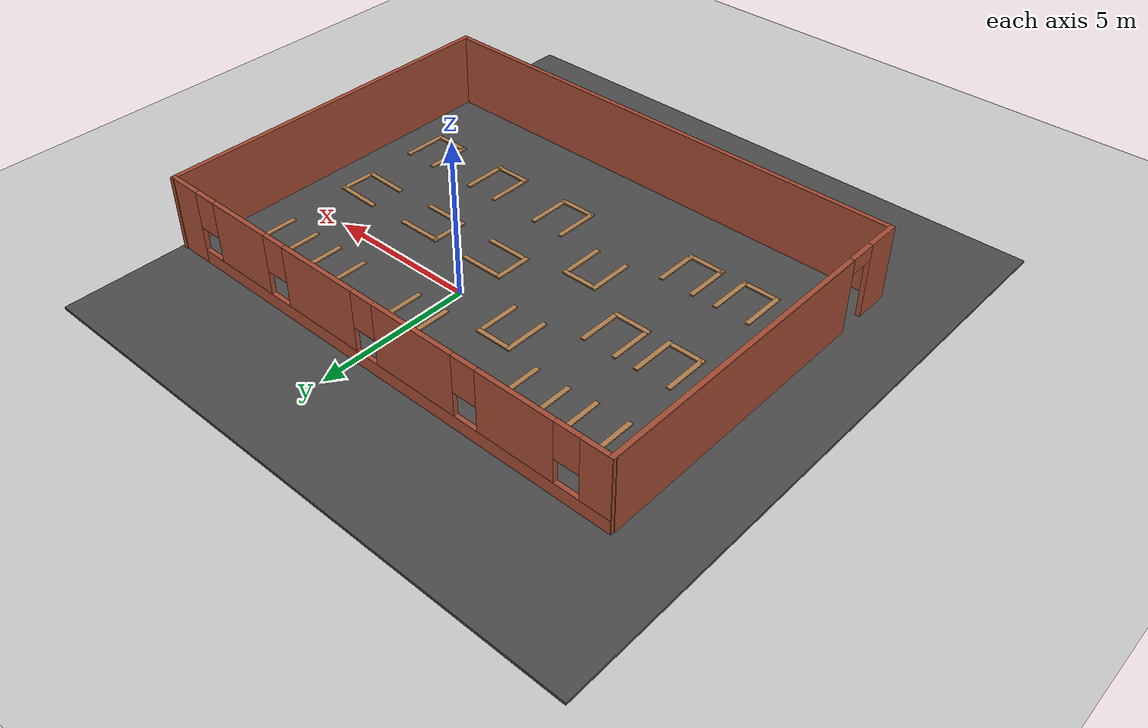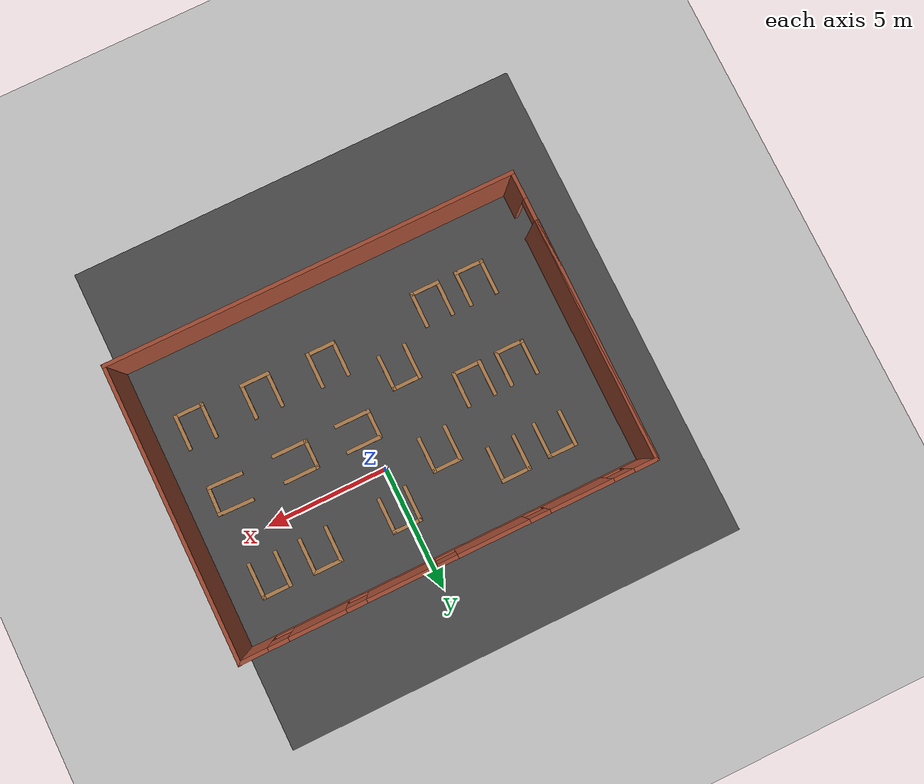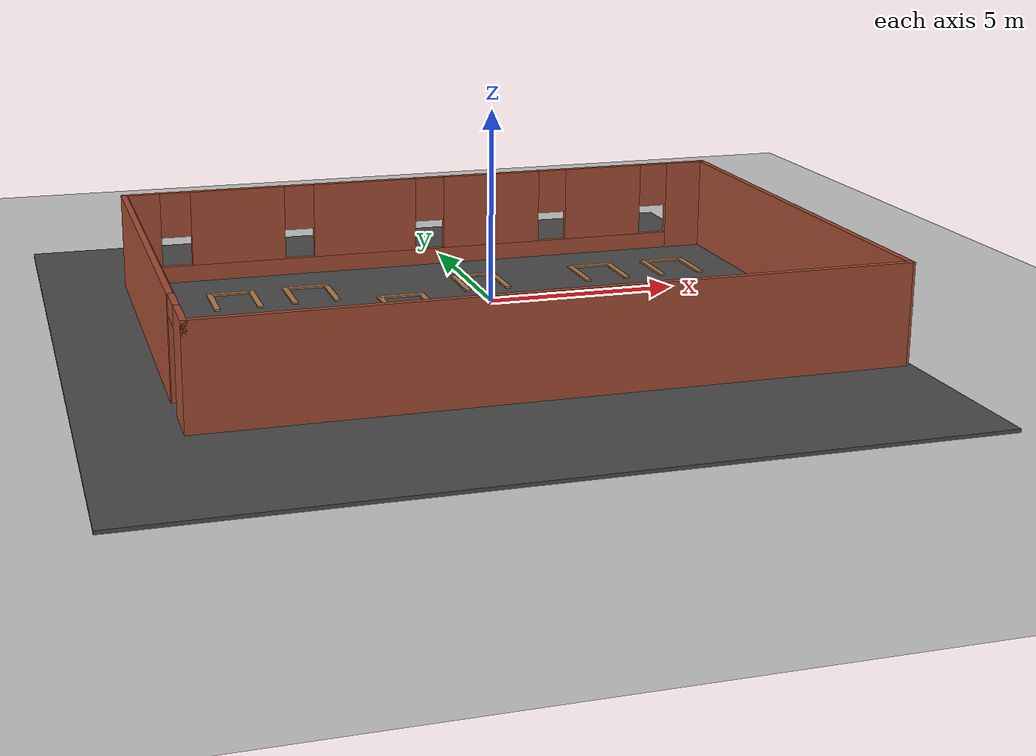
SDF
<sdf version="1.7">
 <world name="default">
  <light name="sun" type="directional">
   <pose>0 0 10 0 -0 0</pose>
   <diffuse>0.8 0.8 0.8 1</diffuse>
   <specular>0.2 0.2 0.2 1</specular>
   <attenuation>
    <range>1000</range>
    <constant>0.9</constant>
    <linear>0.01</linear>
    <quadratic>0.001</quadratic>
   </attenuation>
   <direction>-0.5 0.1 -0.9</direction>
   <spot><inner_angle>0</inner_angle><outer_angle>0</outer_angle><falloff>0</falloff></spot>
  </light>
  <model name="ground_plane">
   <static>1</static>
   <link name="link">
    <collision name="collision">
     <geometry><plane><normal>0 0 1</normal><size>100 100</size></plane></geometry>
     <surface>
      <contact><collide_bitmask>65535</collide_bitmask></contact>
      <friction><ode><mu>100</mu><mu2>50</mu2></ode></friction>
     </surface>
    </collision>
    <visual name="visual">
     <cast_shadows>0</cast_shadows>
     <geometry><plane><normal>0 0 1</normal><size>100 100</size></plane></geometry>
     <material>
      <script><uri>file://media/materials/scripts/gazebo.material</uri><name>Gazebo/Grey</name></script>
     </material>
    </visual>
   </link>
  </model>
  <gravity>0 0 -9.8</gravity>
  <magnetic_field>6e-06 2.3e-05 -4.2e-05</magnetic_field>
  <atmosphere type="adiabatic"/>
  <physics type="ode">
   <max_step_size>0.001</max_step_size>
   <real_time_factor>1</real_time_factor>
   <real_time_update_rate>1000</real_time_update_rate>
  </physics>
  <scene><ambient>0.4 0.4 0.4 1</ambient><background>0.7 0.7 0.7 1</background><shadows>1</shadows></scene>
  <spherical_coordinates>
   <surface_model>EARTH_WGS84</surface_model>
   <latitude_deg>0</latitude_deg>
   <longitude_deg>0</longitude_deg>
   <elevation>0</elevation>
   <heading_deg>0</heading_deg>
  </spherical_coordinates>
  <model name="Test">
   <pose>-0.683476 -1.9137 0 0 -0 0</pose>
   <link name="Wall_10">
    <collision name="Wall_10_Collision">
     <geometry><box><size>16.5 0.15 2.5</size></box></geometry>
     <pose>0 0 1.25 0 -0 0</pose>
    </collision>
    <visual name="Wall_10_Visual">
     <pose>0 0 1.25 0 -0 0</pose>
     <geometry><box><size>16.5 0.15 2.5</size></box></geometry>
     <material>
      <script><uri>file://media/materials/scripts/gazebo.material</uri><name>Gazebo/Bricks</name></script>
      <ambient>1 1 1 1</ambient>
     </material>
     <meta><layer>0</layer></meta>
    </visual>
    <pose>-0.010121 -5.81006 0 0 -0 0</pose>
   </link>
   <link name="Wall_11">
    <collision name="Wall_11_Collision">
     <geometry><box><size>11.7701 0.15 2.5</size></box></geometry>
     <pose>0 0 1.25 0 -0 0</pose>
    </collision>
    <visual name="Wall_11_Visual">
     <pose>0 0 1.25 0 -0 0</pose>
     <geometry><box><size>11.7701 0.15 2.5</size></box></geometry>
     <material>
      <script><uri>file://media/materials/scripts/gazebo.material</uri><name>Gazebo/Bricks</name></script>
      <ambient>1 1 1 1</ambient>
     </material>
     <meta><layer>0</layer></meta>
    </visual>
    <pose>8.17494 0 0 0 -0 1.56906</pose>
   </link>
   <link name="Wall_12">
    <pose>0.009992 5.78994 0 0 -0 3.14159</pose>
    <visual name="Wall_12_Visual_0">
     <pose>-7.65941 0 1.25 0 -0 0</pose>
     <geometry><box><size>1.18118 0.15 2.5</size></box></geometry>
     <material>
      <script><uri>file://media/materials/scripts/gazebo.material</uri><name>Gazebo/Bricks</name></script>
      <ambient>1 1 1 1</ambient>
     </material>
     <meta><layer>0</layer></meta>
    </visual>
    <collision name="Wall_12_Collision_0">
     <geometry><box><size>1.18118 0.15 2.5</size></box></geometry>
     <pose>-7.65941 0 1.25 0 -0 0</pose>
    </collision>
    <visual name="Wall_12_Visual_1">
     <pose>0.590592 0 0.25 0 -0 0</pose>
     <geometry><box><size>15.3188 0.15 0.5</size></box></geometry>
     <material>
      <script><uri>file://media/materials/scripts/gazebo.material</uri><name>Gazebo/Bricks</name></script>
      <ambient>1 1 1 1</ambient>
     </material>
     <meta><layer>0</layer></meta>
    </visual>
    <collision name="Wall_12_Collision_1">
     <geometry><box><size>15.3188 0.15 0.5</size></box></geometry>
     <pose>0.590592 0 0.25 0 -0 0</pose>
    </collision>
    <visual name="Wall_12_Visual_2">
     <pose>-5.15024 0 1.5 0 -0 0</pose>
     <geometry><box><size>2.23715 0.15 2</size></box></geometry>
     <material>
      <script><uri>file://media/materials/scripts/gazebo.material</uri><name>Gazebo/Bricks</name></script>
      <ambient>1 1 1 1</ambient>
     </material>
     <meta><layer>0</layer></meta>
    </visual>
    <collision name="Wall_12_Collision_2">
     <geometry><box><size>2.23715 0.15 2</size></box></geometry>
     <pose>-5.15024 0 1.5 0 -0 0</pose>
    </collision>
    <visual name="Wall_12_Visual_3">
     <pose>-1.85162 0 1.5 0 -0 0</pose>
     <geometry><box><size>2.7601 0.15 2</size></box></geometry>
     <material>
      <script><uri>file://media/materials/scripts/gazebo.material</uri><name>Gazebo/Bricks</name></script>
      <ambient>1 1 1 1</ambient>
     </material>
     <meta><layer>0</layer></meta>
    </visual>
    <collision name="Wall_12_Collision_3">
     <geometry><box><size>2.7601 0.15 2</size></box></geometry>
     <pose>-1.85162 0 1.5 0 -0 0</pose>
    </collision>
    <visual name="Wall_12_Visual_4">
     <pose>1.74871 0 1.5 0 -0 0</pose>
     <geometry><box><size>2.84056 0.15 2</size></box></geometry>
     <material>
      <script><uri>file://media/materials/scripts/gazebo.material</uri><name>Gazebo/Bricks</name></script>
      <ambient>1 1 1 1</ambient>
     </material>
     <meta><layer>0</layer></meta>
    </visual>
    <collision name="Wall_12_Collision_4">
     <geometry><box><size>2.84056 0.15 2</size></box></geometry>
     <pose>1.74871 0 1.5 0 -0 0</pose>
    </collision>
    <visual name="Wall_12_Visual_5">
     <pose>5.22836 0 1.5 0 -0 0</pose>
     <geometry><box><size>2.51874 0.15 2</size></box></geometry>
     <material>
      <script><uri>file://media/materials/scripts/gazebo.material</uri><name>Gazebo/Bricks</name></script>
      <ambient>1 1 1 1</ambient>
     </material>
     <meta><layer>0</layer></meta>
    </visual>
    <collision name="Wall_12_Collision_5">
     <geometry><box><size>2.51874 0.15 2</size></box></geometry>
     <pose>5.22836 0 1.5 0 -0 0</pose>
    </collision>
    <visual name="Wall_12_Visual_6">
     <pose>7.76887 0 1.5 0 -0 0</pose>
     <geometry><box><size>0.962268 0.15 2</size></box></geometry>
     <material>
      <script><uri>file://media/materials/scripts/gazebo.material</uri><name>Gazebo/Bricks</name></script>
      <ambient>1 1 1 1</ambient>
     </material>
     <meta><layer>0</layer></meta>
    </visual>
    <collision name="Wall_12_Collision_6">
     <geometry><box><size>0.962268 0.15 2</size></box></geometry>
     <pose>7.76887 0 1.5 0 -0 0</pose>
    </collision>
    <visual name="Wall_12_Visual_7">
     <pose>-6.66882 0 1.9 0 -0 0</pose>
     <geometry><box><size>0.8 0.15 1.2</size></box></geometry>
     <material>
      <script><uri>file://media/materials/scripts/gazebo.material</uri><name>Gazebo/Bricks</name></script>
      <ambient>1 1 1 1</ambient>
     </material>
     <meta><layer>0</layer></meta>
    </visual>
    <collision name="Wall_12_Collision_7">
     <geometry><box><size>0.8 0.15 1.2</size></box></geometry>
     <pose>-6.66882 0 1.9 0 -0 0</pose>
    </collision>
    <visual name="Wall_12_Visual_8">
     <pose>-3.63167 0 1.9 0 -0 0</pose>
     <geometry><box><size>0.8 0.15 1.2</size></box></geometry>
     <material>
      <script><uri>file://media/materials/scripts/gazebo.material</uri><name>Gazebo/Bricks</name></script>
      <ambient>1 1 1 1</ambient>
     </material>
     <meta><layer>0</layer></meta>
    </visual>
    <collision name="Wall_12_Collision_8">
     <geometry><box><size>0.8 0.15 1.2</size></box></geometry>
     <pose>-3.63167 0 1.9 0 -0 0</pose>
    </collision>
    <visual name="Wall_12_Visual_9">
     <pose>-0.071564 0 1.9 0 -0 0</pose>
     <geometry><box><size>0.8 0.15 1.2</size></box></geometry>
     <material>
      <script><uri>file://media/materials/scripts/gazebo.material</uri><name>Gazebo/Bricks</name></script>
      <ambient>1 1 1 1</ambient>
     </material>
     <meta><layer>0</layer></meta>
    </visual>
    <collision name="Wall_12_Collision_9">
     <geometry><box><size>0.8 0.15 1.2</size></box></geometry>
     <pose>-0.071564 0 1.9 0 -0 0</pose>
    </collision>
    <visual name="Wall_12_Visual_10">
     <pose>3.56899 0 1.9 0 -0 0</pose>
     <geometry><box><size>0.8 0.15 1.2</size></box></geometry>
     <material>
      <script><uri>file://media/materials/scripts/gazebo.material</uri><name>Gazebo/Bricks</name></script>
      <ambient>1 1 1 1</ambient>
     </material>
     <meta><layer>0</layer></meta>
    </visual>
    <collision name="Wall_12_Collision_10">
     <geometry><box><size>0.8 0.15 1.2</size></box></geometry>
     <pose>3.56899 0 1.9 0 -0 0</pose>
    </collision>
    <visual name="Wall_12_Visual_11">
     <pose>6.88773 0 1.9 0 -0 0</pose>
     <geometry><box><size>0.8 0.15 1.2</size></box></geometry>
     <material>
      <script><uri>file://media/materials/scripts/gazebo.material</uri><name>Gazebo/Bricks</name></script>
      <ambient>1 1 1 1</ambient>
     </material>
     <meta><layer>0</layer></meta>
    </visual>
    <collision name="Wall_12_Collision_11">
     <geometry><box><size>0.8 0.15 1.2</size></box></geometry>
     <pose>6.88773 0 1.9 0 -0 0</pose>
    </collision>
   </link>
   <link name="Wall_9">
    <pose>-8.18512 -0.010057 0 0 -0 -1.5708</pose>
    <visual name="Wall_9_Visual_0">
     <pose>-1.02405 0 1.25 0 -0 0</pose>
     <geometry><box><size>9.7019 0.15 2.5</size></box></geometry>
     <material>
      <script><uri>file://media/materials/scripts/gazebo.material</uri><name>Gazebo/Bricks</name></script>
      <ambient>1 1 1 1</ambient>
     </material>
     <meta><layer>0</layer></meta>
    </visual>
    <collision name="Wall_9_Collision_0">
     <geometry><box><size>9.7019 0.15 2.5</size></box></geometry>
     <pose>-1.02405 0 1.25 0 -0 0</pose>
    </collision>
    <visual name="Wall_9_Visual_1">
     <pose>5.30095 0 1.25 0 -0 0</pose>
     <geometry><box><size>1.1481 0.15 2.5</size></box></geometry>
     <material>
      <script><uri>file://media/materials/scripts/gazebo.material</uri><name>Gazebo/Bricks</name></script>
      <ambient>1 1 1 1</ambient>
     </material>
     <meta><layer>0</layer></meta>
    </visual>
    <collision name="Wall_9_Collision_1">
     <geometry><box><size>1.1481 0.15 2.5</size></box></geometry>
     <pose>5.30095 0 1.25 0 -0 0</pose>
    </collision>
    <visual name="Wall_9_Visual_2">
     <pose>4.2769 0 2.25 0 -0 0</pose>
     <geometry><box><size>0.9 0.15 0.5</size></box></geometry>
     <material>
      <script><uri>file://media/materials/scripts/gazebo.material</uri><name>Gazebo/Bricks</name></script>
      <ambient>1 1 1 1</ambient>
     </material>
     <meta><layer>0</layer></meta>
    </visual>
    <collision name="Wall_9_Collision_2">
     <geometry><box><size>0.9 0.15 0.5</size></box></geometry>
     <pose>4.2769 0 2.25 0 -0 0</pose>
    </collision>
   </link>
   <static>1</static>
  </model>
  <model name="Test_0">
   <pose>-3.5175 1.1675 0 0 -0 0</pose>
   <link name="Wall_15">
    <collision name="Wall_15_Collision">
     <geometry><box><size>1.5 0.15 0.1</size></box></geometry>
     <pose>0 0 0.05 0 -0 0</pose>
    </collision>
    <visual name="Wall_15_Visual">
     <pose>0 0 0.05 0 -0 0</pose>
     <geometry><box><size>1.5 0.15 0.1</size></box></geometry>
     <material>
      <script><uri>file://media/materials/scripts/gazebo.material</uri><name>Gazebo/Wood</name></script>
      <ambient>1 0.764706 0.305882 1</ambient>
     </material>
     <meta><layer>0</layer></meta>
    </visual>
    <pose>-3.4425 0.4175 0 0 -0 1.5708</pose>
   </link>
   <link name="Wall_17">
    <collision name="Wall_17_Collision">
     <geometry><box><size>1.25 0.15 0.1</size></box></geometry>
     <pose>0 0 0.05 0 -0 0</pose>
    </collision>
    <visual name="Wall_17_Visual">
     <pose>0 0 0.05 0 -0 0</pose>
     <geometry><box><size>1.25 0.15 0.1</size></box></geometry>
     <material>
      <script><uri>file://media/materials/scripts/gazebo.material</uri><name>Gazebo/Wood</name></script>
      <ambient>0.921569 0.807843 0.615686 1</ambient>
     </material>
     <meta><layer>0</layer></meta>
    </visual>
    <pose>-2.8925 1.0925 0 0 -0 0</pose>
   </link>
   <link name="Wall_18">
    <collision name="Wall_18_Collision">
     <geometry><box><size>1.5 0.15 0.1</size></box></geometry>
     <pose>0 0 0.05 0 -0 0</pose>
    </collision>
    <visual name="Wall_18_Visual">
     <pose>0 0 0.05 0 -0 0</pose>
     <geometry><box><size>1.5 0.15 0.1</size></box></geometry>
     <material>
      <script><uri>file://media/materials/scripts/gazebo.material</uri><name>Gazebo/Wood</name></script>
      <ambient>1 0.764706 0.305882 1</ambient>
     </material>
     <meta><layer>0</layer></meta>
    </visual>
    <pose>-2.3425 0.4175 0 0 -0 -1.5708</pose>
   </link>
   <static>1</static>
  </model>
  <model name="Test_0_clone">
   <pose>-1.50912 1.24172 0 0 -0 0</pose>
   <link name="Wall_15">
    <collision name="Wall_15_Collision">
     <geometry><box><size>1.5 0.15 0.1</size></box></geometry>
     <pose>0 0 0.05 0 -0 0</pose>
    </collision>
    <visual name="Wall_15_Visual">
     <pose>0 0 0.05 0 -0 0</pose>
     <geometry><box><size>1.5 0.15 0.1</size></box></geometry>
     <material>
      <script><uri>file://media/materials/scripts/gazebo.material</uri><name>Gazebo/Wood</name></script>
      <ambient>1 0.764706 0.305882 1</ambient>
     </material>
     <meta><layer>0</layer></meta>
    </visual>
    <pose>-3.4425 0.4175 0 0 -0 1.5708</pose>
   </link>
   <link name="Wall_17">
    <collision name="Wall_17_Collision">
     <geometry><box><size>1.25 0.15 0.1</size></box></geometry>
     <pose>0 0 0.05 0 -0 0</pose>
    </collision>
    <visual name="Wall_17_Visual">
     <pose>0 0 0.05 0 -0 0</pose>
     <geometry><box><size>1.25 0.15 0.1</size></box></geometry>
     <material>
      <script><uri>file://media/materials/scripts/gazebo.material</uri><name>Gazebo/Wood</name></script>
      <ambient>0.921569 0.807843 0.615686 1</ambient>
     </material>
     <meta><layer>0</layer></meta>
    </visual>
    <pose>-2.8925 1.0925 0 0 -0 0</pose>
   </link>
   <link name="Wall_18">
    <collision name="Wall_18_Collision">
     <geometry><box><size>1.5 0.15 0.1</size></box></geometry>
     <pose>0 0 0.05 0 -0 0</pose>
    </collision>
    <visual name="Wall_18_Visual">
     <pose>0 0 0.05 0 -0 0</pose>
     <geometry><box><size>1.5 0.15 0.1</size></box></geometry>
     <material>
      <script><uri>file://media/materials/scripts/gazebo.material</uri><name>Gazebo/Wood</name></script>
      <ambient>1 0.764706 0.305882 1</ambient>
     </material>
     <meta><layer>0</layer></meta>
    </visual>
    <pose>-2.3425 0.4175 0 0 -0 -1.5708</pose>
   </link>
   <static>1</static>
  </model>
  <model name="Test_0_clone_clone">
   <pose>0.724845 -3.76252 0 0 -0 0</pose>
   <link name="Wall_15">
    <collision name="Wall_15_Collision">
     <geometry><box><size>1.5 0.15 0.1</size></box></geometry>
     <pose>0 0 0.05 0 -0 0</pose>
    </collision>
    <visual name="Wall_15_Visual">
     <pose>0 0 0.05 0 -0 0</pose>
     <geometry><box><size>1.5 0.15 0.1</size></box></geometry>
     <material>
      <script><uri>file://media/materials/scripts/gazebo.material</uri><name>Gazebo/Wood</name></script>
      <ambient>1 0.764706 0.305882 1</ambient>
     </material>
     <meta><layer>0</layer></meta>
    </visual>
    <pose>-3.4425 0.4175 0 0 -0 1.5708</pose>
   </link>
   <link name="Wall_17">
    <collision name="Wall_17_Collision">
     <geometry><box><size>1.25 0.15 0.1</size></box></geometry>
     <pose>0 0 0.05 0 -0 0</pose>
    </collision>
    <visual name="Wall_17_Visual">
     <pose>0 0 0.05 0 -0 0</pose>
     <geometry><box><size>1.25 0.15 0.1</size></box></geometry>
     <material>
      <script><uri>file://media/materials/scripts/gazebo.material</uri><name>Gazebo/Wood</name></script>
      <ambient>0.921569 0.807843 0.615686 1</ambient>
     </material>
     <meta><layer>0</layer></meta>
    </visual>
    <pose>-2.8925 1.0925 0 0 -0 0</pose>
   </link>
   <link name="Wall_18">
    <collision name="Wall_18_Collision">
     <geometry><box><size>1.5 0.15 0.1</size></box></geometry>
     <pose>0 0 0.05 0 -0 0</pose>
    </collision>
    <visual name="Wall_18_Visual">
     <pose>0 0 0.05 0 -0 0</pose>
     <geometry><box><size>1.5 0.15 0.1</size></box></geometry>
     <material>
      <script><uri>file://media/materials/scripts/gazebo.material</uri><name>Gazebo/Wood</name></script>
      <ambient>1 0.764706 0.305882 1</ambient>
     </material>
     <meta><layer>0</layer></meta>
    </visual>
    <pose>-2.3425 0.4175 0 0 -0 -1.5708</pose>
   </link>
   <static>1</static>
  </model>
  <model name="Test_0_clone_clone_0">
   <pose>3.08923 1.18201 0 0 -0 0</pose>
   <link name="Wall_15">
    <collision name="Wall_15_Collision">
     <geometry><box><size>1.5 0.15 0.1</size></box></geometry>
     <pose>0 0 0.05 0 -0 0</pose>
    </collision>
    <visual name="Wall_15_Visual">
     <pose>0 0 0.05 0 -0 0</pose>
     <geometry><box><size>1.5 0.15 0.1</size></box></geometry>
     <material>
      <script><uri>file://media/materials/scripts/gazebo.material</uri><name>Gazebo/Wood</name></script>
      <ambient>1 0.764706 0.305882 1</ambient>
     </material>
     <meta><layer>0</layer></meta>
    </visual>
    <pose>-3.4425 0.4175 0 0 -0 1.5708</pose>
   </link>
   <link name="Wall_17">
    <collision name="Wall_17_Collision">
     <geometry><box><size>1.25 0.15 0.1</size></box></geometry>
     <pose>0 0 0.05 0 -0 0</pose>
    </collision>
    <visual name="Wall_17_Visual">
     <pose>0 0 0.05 0 -0 0</pose>
     <geometry><box><size>1.25 0.15 0.1</size></box></geometry>
     <material>
      <script><uri>file://media/materials/scripts/gazebo.material</uri><name>Gazebo/Wood</name></script>
      <ambient>0.921569 0.807843 0.615686 1</ambient>
     </material>
     <meta><layer>0</layer></meta>
    </visual>
    <pose>-2.8925 1.0925 0 0 -0 0</pose>
   </link>
   <link name="Wall_18">
    <collision name="Wall_18_Collision">
     <geometry><box><size>1.5 0.15 0.1</size></box></geometry>
     <pose>0 0 0.05 0 -0 0</pose>
    </collision>
    <visual name="Wall_18_Visual">
     <pose>0 0 0.05 0 -0 0</pose>
     <geometry><box><size>1.5 0.15 0.1</size></box></geometry>
     <material>
      <script><uri>file://media/materials/scripts/gazebo.material</uri><name>Gazebo/Wood</name></script>
      <ambient>1 0.764706 0.305882 1</ambient>
     </material>
     <meta><layer>0</layer></meta>
    </visual>
    <pose>-2.3425 0.4175 0 0 -0 -1.5708</pose>
   </link>
   <static>1</static>
  </model>
  <model name="Test_0_clone_clone_1">
   <pose>6.46422 1.24613 0 0 -0 0</pose>
   <link name="Wall_15">
    <collision name="Wall_15_Collision">
     <geometry><box><size>1.5 0.15 0.1</size></box></geometry>
     <pose>0 0 0.05 0 -0 0</pose>
    </collision>
    <visual name="Wall_15_Visual">
     <pose>0 0 0.05 0 -0 0</pose>
     <geometry><box><size>1.5 0.15 0.1</size></box></geometry>
     <material>
      <script><uri>file://media/materials/scripts/gazebo.material</uri><name>Gazebo/Wood</name></script>
      <ambient>1 0.764706 0.305882 1</ambient>
     </material>
     <meta><layer>0</layer></meta>
    </visual>
    <pose>-3.4425 0.4175 0 0 -0 1.5708</pose>
   </link>
   <link name="Wall_17">
    <collision name="Wall_17_Collision">
     <geometry><box><size>1.25 0.15 0.1</size></box></geometry>
     <pose>0 0 0.05 0 -0 0</pose>
    </collision>
    <visual name="Wall_17_Visual">
     <pose>0 0 0.05 0 -0 0</pose>
     <geometry><box><size>1.25 0.15 0.1</size></box></geometry>
     <material>
      <script><uri>file://media/materials/scripts/gazebo.material</uri><name>Gazebo/Wood</name></script>
      <ambient>0.921569 0.807843 0.615686 1</ambient>
     </material>
     <meta><layer>0</layer></meta>
    </visual>
    <pose>-2.8925 1.0925 0 0 -0 0</pose>
   </link>
   <link name="Wall_18">
    <collision name="Wall_18_Collision">
     <geometry><box><size>1.5 0.15 0.1</size></box></geometry>
     <pose>0 0 0.05 0 -0 0</pose>
    </collision>
    <visual name="Wall_18_Visual">
     <pose>0 0 0.05 0 -0 0</pose>
     <geometry><box><size>1.5 0.15 0.1</size></box></geometry>
     <material>
      <script><uri>file://media/materials/scripts/gazebo.material</uri><name>Gazebo/Wood</name></script>
      <ambient>1 0.764706 0.305882 1</ambient>
     </material>
     <meta><layer>0</layer></meta>
    </visual>
    <pose>-2.3425 0.4175 0 0 -0 -1.5708</pose>
   </link>
   <static>1</static>
  </model>
  <model name="Test_0_clone_clone_2">
   <pose>8.59496 1.24484 0 0 -0 0</pose>
   <link name="Wall_15">
    <collision name="Wall_15_Collision">
     <geometry><box><size>1.5 0.15 0.1</size></box></geometry>
     <pose>0 0 0.05 0 -0 0</pose>
    </collision>
    <visual name="Wall_15_Visual">
     <pose>0 0 0.05 0 -0 0</pose>
     <geometry><box><size>1.5 0.15 0.1</size></box></geometry>
     <material>
      <script><uri>file://media/materials/scripts/gazebo.material</uri><name>Gazebo/Wood</name></script>
      <ambient>1 0.764706 0.305882 1</ambient>
     </material>
     <meta><layer>0</layer></meta>
    </visual>
    <pose>-3.4425 0.4175 0 0 -0 1.5708</pose>
   </link>
   <link name="Wall_17">
    <collision name="Wall_17_Collision">
     <geometry><box><size>1.25 0.15 0.1</size></box></geometry>
     <pose>0 0 0.05 0 -0 0</pose>
    </collision>
    <visual name="Wall_17_Visual">
     <pose>0 0 0.05 0 -0 0</pose>
     <geometry><box><size>1.25 0.15 0.1</size></box></geometry>
     <material>
      <script><uri>file://media/materials/scripts/gazebo.material</uri><name>Gazebo/Wood</name></script>
      <ambient>0.921569 0.807843 0.615686 1</ambient>
     </material>
     <meta><layer>0</layer></meta>
    </visual>
    <pose>-2.8925 1.0925 0 0 -0 0</pose>
   </link>
   <link name="Wall_18">
    <collision name="Wall_18_Collision">
     <geometry><box><size>1.5 0.15 0.1</size></box></geometry>
     <pose>0 0 0.05 0 -0 0</pose>
    </collision>
    <visual name="Wall_18_Visual">
     <pose>0 0 0.05 0 -0 0</pose>
     <geometry><box><size>1.5 0.15 0.1</size></box></geometry>
     <material>
      <script><uri>file://media/materials/scripts/gazebo.material</uri><name>Gazebo/Wood</name></script>
      <ambient>1 0.764706 0.305882 1</ambient>
     </material>
     <meta><layer>0</layer></meta>
    </visual>
    <pose>-2.3425 0.4175 0 0 -0 -1.5708</pose>
   </link>
   <static>1</static>
  </model>
  <model name="Test_0_clone_0_clone">
   <pose>-7.37959 -1.07811 0 0 -0 3.13796</pose>
   <link name="Wall_15">
    <collision name="Wall_15_Collision">
     <geometry><box><size>1.5 0.15 0.1</size></box></geometry>
     <pose>0 0 0.05 0 -0 0</pose>
    </collision>
    <visual name="Wall_15_Visual">
     <pose>0 0 0.05 0 -0 0</pose>
     <geometry><box><size>1.5 0.15 0.1</size></box></geometry>
     <material>
      <script><uri>file://media/materials/scripts/gazebo.material</uri><name>Gazebo/Wood</name></script>
      <ambient>1 0.764706 0.305882 1</ambient>
     </material>
     <meta><layer>0</layer></meta>
    </visual>
    <pose>-3.4425 0.4175 0 0 -0 1.5708</pose>
   </link>
   <link name="Wall_17">
    <collision name="Wall_17_Collision">
     <geometry><box><size>1.25 0.15 0.1</size></box></geometry>
     <pose>0 0 0.05 0 -0 0</pose>
    </collision>
    <visual name="Wall_17_Visual">
     <pose>0 0 0.05 0 -0 0</pose>
     <geometry><box><size>1.25 0.15 0.1</size></box></geometry>
     <material>
      <script><uri>file://media/materials/scripts/gazebo.material</uri><name>Gazebo/Wood</name></script>
      <ambient>0.921569 0.807843 0.615686 1</ambient>
     </material>
     <meta><layer>0</layer></meta>
    </visual>
    <pose>-2.8925 1.0925 0 0 -0 0</pose>
   </link>
   <link name="Wall_18">
    <collision name="Wall_18_Collision">
     <geometry><box><size>1.5 0.15 0.1</size></box></geometry>
     <pose>0 0 0.05 0 -0 0</pose>
    </collision>
    <visual name="Wall_18_Visual">
     <pose>0 0 0.05 0 -0 0</pose>
     <geometry><box><size>1.5 0.15 0.1</size></box></geometry>
     <material>
      <script><uri>file://media/materials/scripts/gazebo.material</uri><name>Gazebo/Wood</name></script>
      <ambient>1 0.764706 0.305882 1</ambient>
     </material>
     <meta><layer>0</layer></meta>
    </visual>
    <pose>-2.3425 0.4175 0 0 -0 -1.5708</pose>
   </link>
   <static>1</static>
  </model>
  <model name="Test_2">
   <pose>-4.482 -0.9505 0 0 -0 0</pose>
   <link name="Wall_19">
    <collision name="Wall_19_Collision">
     <geometry><box><size>9.6 0.15 2.5</size></box></geometry>
     <pose>0 0 1.25 0 -0 0</pose>
    </collision>
    <visual name="Wall_19_Visual">
     <pose>0 0 1.25 0 -0 0</pose>
     <geometry><box><size>9.6 0.15 2.5</size></box></geometry>
     <material>
      <script><uri>file://media/materials/scripts/gazebo.material</uri><name>Gazebo/Bricks</name></script>
      <ambient>1 1 1 1</ambient>
     </material>
     <meta><layer>0</layer></meta>
    </visual>
    <pose>-4.407 0 0 0 -0 -1.5708</pose>
   </link>
   <static>1</static>
  </model>
  <model name="asphalt_plane">
   <link name="link">
    <inertial>
     <mass>1</mass>
     <inertia><ixx>1</ixx><ixy>0</ixy><ixz>0</ixz><iyy>1</iyy><iyz>0</iyz><izz>1</izz></inertia>
    </inertial>
    <visual name="visual">
     <cast_shadows>0</cast_shadows>
     <geometry><box><size>18.79 20 0.109366</size></box></geometry>
     <material>
      <script>
       <uri>model://asphalt_plane/materials/scripts</uri>
       <uri>model://asphalt_plane/materials/textures</uri>
       <name>vrc/asphalt</name>
      </script>
      <shader type="pixel"><normal_map>__default__</normal_map></shader>
      <ambient>0.5 0.5 0.5 1</ambient>
      <diffuse>0.5 0.5 0.5 1</diffuse>
      <specular>0.2 0.2 0.2 1</specular>
      <emissive>0 0 0 1</emissive>
     </material>
    </visual>
    <collision name="collision">
     <geometry><box><size>18.79 411.527 0.109366</size></box></geometry>
     <surface>
      <friction>
       <ode><mu>1</mu><mu2>1</mu2><fdir1>0 0 0</fdir1><slip1>0</slip1><slip2>0</slip2></ode>
       <torsional>
        <coefficient>1</coefficient>
        <patch_radius>0</patch_radius>
        <surface_radius>0</surface_radius>
        <use_patch_radius>1</use_patch_radius>
        <ode><slip>0</slip></ode>
       </torsional>
      </friction>
      <bounce><restitution_coefficient>0</restitution_coefficient><threshold>1e+06</threshold></bounce>
      <contact>
       <collide_without_contact>0</collide_without_contact>
       <collide_without_contact_bitmask>1</collide_without_contact_bitmask>
       <collide_bitmask>1</collide_bitmask>
       <ode>
        <soft_cfm>0</soft_cfm>
        <soft_erp>0.2</soft_erp>
        <kp>1e+13</kp>
        <kd>1</kd>
        <max_vel>0.01</max_vel>
        <min_depth>0</min_depth>
       </ode>
       <bullet>
        <split_impulse>1</split_impulse>
        <split_impulse_penetration_threshold>-0.01</split_impulse_penetration_threshold>
        <soft_cfm>0</soft_cfm>
        <soft_erp>0.2</soft_erp>
        <kp>1e+13</kp>
        <kd>1</kd>
       </bullet>
      </contact>
     </surface>
    </collision>
   </link>
   <static>1</static>
   <pose>-1.73228 -2.09801 0 0 -0 0</pose>
  </model>
  <model name="Test_0_clone_clone_clone">
   <pose>-9.21336 -1.10168 0 0 -0 3.139</pose>
   <link name="Wall_15">
    <collision name="Wall_15_Collision">
     <geometry><box><size>1.5 0.15 0.1</size></box></geometry>
     <pose>0 0 0.05 0 -0 0</pose>
    </collision>
    <visual name="Wall_15_Visual">
     <pose>0 0 0.05 0 -0 0</pose>
     <geometry><box><size>1.5 0.15 0.1</size></box></geometry>
     <material>
      <script><uri>file://media/materials/scripts/gazebo.material</uri><name>Gazebo/Wood</name></script>
      <ambient>1 0.764706 0.305882 1</ambient>
     </material>
     <meta><layer>0</layer></meta>
    </visual>
    <pose>-3.4425 0.4175 0 0 -0 1.5708</pose>
   </link>
   <link name="Wall_17">
    <collision name="Wall_17_Collision">
     <geometry><box><size>1.25 0.15 0.1</size></box></geometry>
     <pose>0 0 0.05 0 -0 0</pose>
    </collision>
    <visual name="Wall_17_Visual">
     <pose>0 0 0.05 0 -0 0</pose>
     <geometry><box><size>1.25 0.15 0.1</size></box></geometry>
     <material>
      <script><uri>file://media/materials/scripts/gazebo.material</uri><name>Gazebo/Wood</name></script>
      <ambient>0.921569 0.807843 0.615686 1</ambient>
     </material>
     <meta><layer>0</layer></meta>
    </visual>
    <pose>-2.8925 1.0925 0 0 -0 0</pose>
   </link>
   <link name="Wall_18">
    <collision name="Wall_18_Collision">
     <geometry><box><size>1.5 0.15 0.1</size></box></geometry>
     <pose>0 0 0.05 0 -0 0</pose>
    </collision>
    <visual name="Wall_18_Visual">
     <pose>0 0 0.05 0 -0 0</pose>
     <geometry><box><size>1.5 0.15 0.1</size></box></geometry>
     <material>
      <script><uri>file://media/materials/scripts/gazebo.material</uri><name>Gazebo/Wood</name></script>
      <ambient>1 0.764706 0.305882 1</ambient>
     </material>
     <meta><layer>0</layer></meta>
    </visual>
    <pose>-2.3425 0.4175 0 0 -0 -1.5708</pose>
   </link>
   <static>1</static>
  </model>
  <model name="Test_0_clone_0_clone_clone">
   <pose>-9.18751 -4.59727 0 0 -0 3.13797</pose>
   <link name="Wall_15">
    <collision name="Wall_15_Collision">
     <geometry><box><size>1.5 0.15 0.1</size></box></geometry>
     <pose>0 0 0.05 0 -0 0</pose>
    </collision>
    <visual name="Wall_15_Visual">
     <pose>0 0 0.05 0 -0 0</pose>
     <geometry><box><size>1.5 0.15 0.1</size></box></geometry>
     <material>
      <script><uri>file://media/materials/scripts/gazebo.material</uri><name>Gazebo/Wood</name></script>
      <ambient>1 0.764706 0.305882 1</ambient>
     </material>
     <meta><layer>0</layer></meta>
    </visual>
    <pose>-3.4425 0.4175 0 0 -0 1.5708</pose>
   </link>
   <link name="Wall_17">
    <collision name="Wall_17_Collision">
     <geometry><box><size>1.25 0.15 0.1</size></box></geometry>
     <pose>0 0 0.05 0 -0 0</pose>
    </collision>
    <visual name="Wall_17_Visual">
     <pose>0 0 0.05 0 -0 0</pose>
     <geometry><box><size>1.25 0.15 0.1</size></box></geometry>
     <material>
      <script><uri>file://media/materials/scripts/gazebo.material</uri><name>Gazebo/Wood</name></script>
      <ambient>0.921569 0.807843 0.615686 1</ambient>
     </material>
     <meta><layer>0</layer></meta>
    </visual>
    <pose>-2.8925 1.0925 0 0 -0 0</pose>
   </link>
   <link name="Wall_18">
    <collision name="Wall_18_Collision">
     <geometry><box><size>1.5 0.15 0.1</size></box></geometry>
     <pose>0 0 0.05 0 -0 0</pose>
    </collision>
    <visual name="Wall_18_Visual">
     <pose>0 0 0.05 0 -0 0</pose>
     <geometry><box><size>1.5 0.15 0.1</size></box></geometry>
     <material>
      <script><uri>file://media/materials/scripts/gazebo.material</uri><name>Gazebo/Wood</name></script>
      <ambient>1 0.764706 0.305882 1</ambient>
     </material>
     <meta><layer>0</layer></meta>
    </visual>
    <pose>-2.3425 0.4175 0 0 -0 -1.5708</pose>
   </link>
   <static>1</static>
  </model>
  <model name="Test_0_clone_0_clone_clone_0">
   <pose>-7.28018 -4.58489 0 0 -0 3.13796</pose>
   <link name="Wall_15">
    <collision name="Wall_15_Collision">
     <geometry><box><size>1.5 0.15 0.1</size></box></geometry>
     <pose>0 0 0.05 0 -0 0</pose>
    </collision>
    <visual name="Wall_15_Visual">
     <pose>0 0 0.05 0 -0 0</pose>
     <geometry><box><size>1.5 0.15 0.1</size></box></geometry>
     <material>
      <script><uri>file://media/materials/scripts/gazebo.material</uri><name>Gazebo/Wood</name></script>
      <ambient>1 0.764706 0.305882 1</ambient>
     </material>
     <meta><layer>0</layer></meta>
    </visual>
    <pose>-3.4425 0.4175 0 0 -0 1.5708</pose>
   </link>
   <link name="Wall_17">
    <collision name="Wall_17_Collision">
     <geometry><box><size>1.25 0.15 0.1</size></box></geometry>
     <pose>0 0 0.05 0 -0 0</pose>
    </collision>
    <visual name="Wall_17_Visual">
     <pose>0 0 0.05 0 -0 0</pose>
     <geometry><box><size>1.25 0.15 0.1</size></box></geometry>
     <material>
      <script><uri>file://media/materials/scripts/gazebo.material</uri><name>Gazebo/Wood</name></script>
      <ambient>0.921569 0.807843 0.615686 1</ambient>
     </material>
     <meta><layer>0</layer></meta>
    </visual>
    <pose>-2.8925 1.0925 0 0 -0 0</pose>
   </link>
   <link name="Wall_18">
    <collision name="Wall_18_Collision">
     <geometry><box><size>1.5 0.15 0.1</size></box></geometry>
     <pose>0 0 0.05 0 -0 0</pose>
    </collision>
    <visual name="Wall_18_Visual">
     <pose>0 0 0.05 0 -0 0</pose>
     <geometry><box><size>1.5 0.15 0.1</size></box></geometry>
     <material>
      <script><uri>file://media/materials/scripts/gazebo.material</uri><name>Gazebo/Wood</name></script>
      <ambient>1 0.764706 0.305882 1</ambient>
     </material>
     <meta><layer>0</layer></meta>
    </visual>
    <pose>-2.3425 0.4175 0 0 -0 -1.5708</pose>
   </link>
   <static>1</static>
  </model>
  <model name="Test_0_clone_clone_clone_0">
   <pose>0.704805 -0.239996 0 0 -0 0</pose>
   <link name="Wall_15">
    <collision name="Wall_15_Collision">
     <geometry><box><size>1.5 0.15 0.1</size></box></geometry>
     <pose>0 0 0.05 0 -0 0</pose>
    </collision>
    <visual name="Wall_15_Visual">
     <pose>0 0 0.05 0 -0 0</pose>
     <geometry><box><size>1.5 0.15 0.1</size></box></geometry>
     <material>
      <script><uri>file://media/materials/scripts/gazebo.material</uri><name>Gazebo/Wood</name></script>
      <ambient>1 0.764706 0.305882 1</ambient>
     </material>
     <meta><layer>0</layer></meta>
    </visual>
    <pose>-3.4425 0.4175 0 0 -0 1.5708</pose>
   </link>
   <link name="Wall_17">
    <collision name="Wall_17_Collision">
     <geometry><box><size>1.25 0.15 0.1</size></box></geometry>
     <pose>0 0 0.05 0 -0 0</pose>
    </collision>
    <visual name="Wall_17_Visual">
     <pose>0 0 0.05 0 -0 0</pose>
     <geometry><box><size>1.25 0.15 0.1</size></box></geometry>
     <material>
      <script><uri>file://media/materials/scripts/gazebo.material</uri><name>Gazebo/Wood</name></script>
      <ambient>0.921569 0.807843 0.615686 1</ambient>
     </material>
     <meta><layer>0</layer></meta>
    </visual>
    <pose>-2.8925 1.0925 0 0 -0 0</pose>
   </link>
   <link name="Wall_18">
    <collision name="Wall_18_Collision">
     <geometry><box><size>1.5 0.15 0.1</size></box></geometry>
     <pose>0 0 0.05 0 -0 0</pose>
    </collision>
    <visual name="Wall_18_Visual">
     <pose>0 0 0.05 0 -0 0</pose>
     <geometry><box><size>1.5 0.15 0.1</size></box></geometry>
     <material>
      <script><uri>file://media/materials/scripts/gazebo.material</uri><name>Gazebo/Wood</name></script>
      <ambient>1 0.764706 0.305882 1</ambient>
     </material>
     <meta><layer>0</layer></meta>
    </visual>
    <pose>-2.3425 0.4175 0 0 -0 -1.5708</pose>
   </link>
   <static>1</static>
  </model>
  <model name="Test_0_clone_clone_clone_0_clone">
   <pose>0.759391 1.11044 0 0 -0 1.56903</pose>
   <link name="Wall_15">
    <collision name="Wall_15_Collision">
     <geometry><box><size>1.5 0.15 0.1</size></box></geometry>
     <pose>0 0 0.05 0 -0 0</pose>
    </collision>
    <visual name="Wall_15_Visual">
     <pose>0 0 0.05 0 -0 0</pose>
     <geometry><box><size>1.5 0.15 0.1</size></box></geometry>
     <material>
      <script><uri>file://media/materials/scripts/gazebo.material</uri><name>Gazebo/Wood</name></script>
      <ambient>1 0.764706 0.305882 1</ambient>
     </material>
     <meta><layer>0</layer></meta>
    </visual>
    <pose>-3.4425 0.4175 0 0 -0 1.5708</pose>
   </link>
   <link name="Wall_17">
    <collision name="Wall_17_Collision">
     <geometry><box><size>1.25 0.15 0.1</size></box></geometry>
     <pose>0 0 0.05 0 -0 0</pose>
    </collision>
    <visual name="Wall_17_Visual">
     <pose>0 0 0.05 0 -0 0</pose>
     <geometry><box><size>1.25 0.15 0.1</size></box></geometry>
     <material>
      <script><uri>file://media/materials/scripts/gazebo.material</uri><name>Gazebo/Wood</name></script>
      <ambient>0.921569 0.807843 0.615686 1</ambient>
     </material>
     <meta><layer>0</layer></meta>
    </visual>
    <pose>-2.8925 1.0925 0 0 -0 0</pose>
   </link>
   <link name="Wall_18">
    <collision name="Wall_18_Collision">
     <geometry><box><size>1.5 0.15 0.1</size></box></geometry>
     <pose>0 0 0.05 0 -0 0</pose>
    </collision>
    <visual name="Wall_18_Visual">
     <pose>0 0 0.05 0 -0 0</pose>
     <geometry><box><size>1.5 0.15 0.1</size></box></geometry>
     <material>
      <script><uri>file://media/materials/scripts/gazebo.material</uri><name>Gazebo/Wood</name></script>
      <ambient>1 0.764706 0.305882 1</ambient>
     </material>
     <meta><layer>0</layer></meta>
    </visual>
    <pose>-2.3425 0.4175 0 0 -0 -1.5708</pose>
   </link>
   <static>1</static>
  </model>
  <model name="Test_0_clone_0_clone_clone_0_clone">
   <pose>-2.62172 -4.20866 0 0 -0 3.13796</pose>
   <link name="Wall_15">
    <collision name="Wall_15_Collision">
     <geometry><box><size>1.5 0.15 0.1</size></box></geometry>
     <pose>0 0 0.05 0 -0 0</pose>
    </collision>
    <visual name="Wall_15_Visual">
     <pose>0 0 0.05 0 -0 0</pose>
     <geometry><box><size>1.5 0.15 0.1</size></box></geometry>
     <material>
      <script><uri>file://media/materials/scripts/gazebo.material</uri><name>Gazebo/Wood</name></script>
      <ambient>1 0.764706 0.305882 1</ambient>
     </material>
     <meta><layer>0</layer></meta>
    </visual>
    <pose>-3.4425 0.4175 0 0 -0 1.5708</pose>
   </link>
   <link name="Wall_17">
    <collision name="Wall_17_Collision">
     <geometry><box><size>1.25 0.15 0.1</size></box></geometry>
     <pose>0 0 0.05 0 -0 0</pose>
    </collision>
    <visual name="Wall_17_Visual">
     <pose>0 0 0.05 0 -0 0</pose>
     <geometry><box><size>1.25 0.15 0.1</size></box></geometry>
     <material>
      <script><uri>file://media/materials/scripts/gazebo.material</uri><name>Gazebo/Wood</name></script>
      <ambient>0.921569 0.807843 0.615686 1</ambient>
     </material>
     <meta><layer>0</layer></meta>
    </visual>
    <pose>-2.8925 1.0925 0 0 -0 0</pose>
   </link>
   <link name="Wall_18">
    <collision name="Wall_18_Collision">
     <geometry><box><size>1.5 0.15 0.1</size></box></geometry>
     <pose>0 0 0.05 0 -0 0</pose>
    </collision>
    <visual name="Wall_18_Visual">
     <pose>0 0 0.05 0 -0 0</pose>
     <geometry><box><size>1.5 0.15 0.1</size></box></geometry>
     <material>
      <script><uri>file://media/materials/scripts/gazebo.material</uri><name>Gazebo/Wood</name></script>
      <ambient>1 0.764706 0.305882 1</ambient>
     </material>
     <meta><layer>0</layer></meta>
    </visual>
    <pose>-2.3425 0.4175 0 0 -0 -1.5708</pose>
   </link>
   <static>1</static>
  </model>
  <model name="Test_0_clone_clone_clone_0_clone_clone">
   <pose>3.41082 1.10313 0 0 -0 1.56903</pose>
   <link name="Wall_15">
    <collision name="Wall_15_Collision">
     <geometry><box><size>1.5 0.15 0.1</size></box></geometry>
     <pose>0 0 0.05 0 -0 0</pose>
    </collision>
    <visual name="Wall_15_Visual">
     <pose>0 0 0.05 0 -0 0</pose>
     <geometry><box><size>1.5 0.15 0.1</size></box></geometry>
     <material>
      <script><uri>file://media/materials/scripts/gazebo.material</uri><name>Gazebo/Wood</name></script>
      <ambient>1 0.764706 0.305882 1</ambient>
     </material>
     <meta><layer>0</layer></meta>
    </visual>
    <pose>-3.4425 0.4175 0 0 -0 1.5708</pose>
   </link>
   <link name="Wall_17">
    <collision name="Wall_17_Collision">
     <geometry><box><size>1.25 0.15 0.1</size></box></geometry>
     <pose>0 0 0.05 0 -0 0</pose>
    </collision>
    <visual name="Wall_17_Visual">
     <pose>0 0 0.05 0 -0 0</pose>
     <geometry><box><size>1.25 0.15 0.1</size></box></geometry>
     <material>
      <script><uri>file://media/materials/scripts/gazebo.material</uri><name>Gazebo/Wood</name></script>
      <ambient>0.921569 0.807843 0.615686 1</ambient>
     </material>
     <meta><layer>0</layer></meta>
    </visual>
    <pose>-2.8925 1.0925 0 0 -0 0</pose>
   </link>
   <link name="Wall_18">
    <collision name="Wall_18_Collision">
     <geometry><box><size>1.5 0.15 0.1</size></box></geometry>
     <pose>0 0 0.05 0 -0 0</pose>
    </collision>
    <visual name="Wall_18_Visual">
     <pose>0 0 0.05 0 -0 0</pose>
     <geometry><box><size>1.5 0.15 0.1</size></box></geometry>
     <material>
      <script><uri>file://media/materials/scripts/gazebo.material</uri><name>Gazebo/Wood</name></script>
      <ambient>1 0.764706 0.305882 1</ambient>
     </material>
     <meta><layer>0</layer></meta>
    </visual>
    <pose>-2.3425 0.4175 0 0 -0 -1.5708</pose>
   </link>
   <static>1</static>
  </model>
  <model name="Test_0_clone_clone_clone_0_clone_clone_0">
   <pose>5.25349 -4.64097 0 0 -0 -1.59974</pose>
   <link name="Wall_15">
    <collision name="Wall_15_Collision">
     <geometry><box><size>1.5 0.15 0.1</size></box></geometry>
     <pose>0 0 0.05 0 -0 0</pose>
    </collision>
    <visual name="Wall_15_Visual">
     <pose>0 0 0.05 0 -0 0</pose>
     <geometry><box><size>1.5 0.15 0.1</size></box></geometry>
     <material>
      <script><uri>file://media/materials/scripts/gazebo.material</uri><name>Gazebo/Wood</name></script>
      <ambient>1 0.764706 0.305882 1</ambient>
     </material>
     <meta><layer>0</layer></meta>
    </visual>
    <pose>-3.4425 0.4175 0 0 -0 1.5708</pose>
   </link>
   <link name="Wall_17">
    <collision name="Wall_17_Collision">
     <geometry><box><size>1.25 0.15 0.1</size></box></geometry>
     <pose>0 0 0.05 0 -0 0</pose>
    </collision>
    <visual name="Wall_17_Visual">
     <pose>0 0 0.05 0 -0 0</pose>
     <geometry><box><size>1.25 0.15 0.1</size></box></geometry>
     <material>
      <script><uri>file://media/materials/scripts/gazebo.material</uri><name>Gazebo/Wood</name></script>
      <ambient>0.921569 0.807843 0.615686 1</ambient>
     </material>
     <meta><layer>0</layer></meta>
    </visual>
    <pose>-2.8925 1.0925 0 0 -0 0</pose>
   </link>
   <link name="Wall_18">
    <collision name="Wall_18_Collision">
     <geometry><box><size>1.5 0.15 0.1</size></box></geometry>
     <pose>0 0 0.05 0 -0 0</pose>
    </collision>
    <visual name="Wall_18_Visual">
     <pose>0 0 0.05 0 -0 0</pose>
     <geometry><box><size>1.5 0.15 0.1</size></box></geometry>
     <material>
      <script><uri>file://media/materials/scripts/gazebo.material</uri><name>Gazebo/Wood</name></script>
      <ambient>1 0.764706 0.305882 1</ambient>
     </material>
     <meta><layer>0</layer></meta>
    </visual>
    <pose>-2.3425 0.4175 0 0 -0 -1.5708</pose>
   </link>
   <static>1</static>
  </model>
  <model name="Test_0_clone_0_clone_clone_0_clone_clone">
   <pose>0.184036 -4.23285 0 0 -0 3.13796</pose>
   <link name="Wall_15">
    <collision name="Wall_15_Collision">
     <geometry><box><size>1.5 0.15 0.1</size></box></geometry>
     <pose>0 0 0.05 0 -0 0</pose>
    </collision>
    <visual name="Wall_15_Visual">
     <pose>0 0 0.05 0 -0 0</pose>
     <geometry><box><size>1.5 0.15 0.1</size></box></geometry>
     <material>
      <script><uri>file://media/materials/scripts/gazebo.material</uri><name>Gazebo/Wood</name></script>
      <ambient>1 0.764706 0.305882 1</ambient>
     </material>
     <meta><layer>0</layer></meta>
    </visual>
    <pose>-3.4425 0.4175 0 0 -0 1.5708</pose>
   </link>
   <link name="Wall_17">
    <collision name="Wall_17_Collision">
     <geometry><box><size>1.25 0.15 0.1</size></box></geometry>
     <pose>0 0 0.05 0 -0 0</pose>
    </collision>
    <visual name="Wall_17_Visual">
     <pose>0 0 0.05 0 -0 0</pose>
     <geometry><box><size>1.25 0.15 0.1</size></box></geometry>
     <material>
      <script><uri>file://media/materials/scripts/gazebo.material</uri><name>Gazebo/Wood</name></script>
      <ambient>0.921569 0.807843 0.615686 1</ambient>
     </material>
     <meta><layer>0</layer></meta>
    </visual>
    <pose>-2.8925 1.0925 0 0 -0 0</pose>
   </link>
   <link name="Wall_18">
    <collision name="Wall_18_Collision">
     <geometry><box><size>1.5 0.15 0.1</size></box></geometry>
     <pose>0 0 0.05 0 -0 0</pose>
    </collision>
    <visual name="Wall_18_Visual">
     <pose>0 0 0.05 0 -0 0</pose>
     <geometry><box><size>1.5 0.15 0.1</size></box></geometry>
     <material>
      <script><uri>file://media/materials/scripts/gazebo.material</uri><name>Gazebo/Wood</name></script>
      <ambient>1 0.764706 0.305882 1</ambient>
     </material>
     <meta><layer>0</layer></meta>
    </visual>
    <pose>-2.3425 0.4175 0 0 -0 -1.5708</pose>
   </link>
   <static>1</static>
  </model>
  <model name="Test_0_clone_0_clone_clone_0_clone_clone_clone">
   <pose>2.97177 -4.24585 0 0 -0 3.13796</pose>
   <link name="Wall_15">
    <collision name="Wall_15_Collision">
     <geometry><box><size>1.5 0.15 0.1</size></box></geometry>
     <pose>0 0 0.05 0 -0 0</pose>
    </collision>
    <visual name="Wall_15_Visual">
     <pose>0 0 0.05 0 -0 0</pose>
     <geometry><box><size>1.5 0.15 0.1</size></box></geometry>
     <material>
      <script><uri>file://media/materials/scripts/gazebo.material</uri><name>Gazebo/Wood</name></script>
      <ambient>1 0.764706 0.305882 1</ambient>
     </material>
     <meta><layer>0</layer></meta>
    </visual>
    <pose>-3.4425 0.4175 0 0 -0 1.5708</pose>
   </link>
   <link name="Wall_17">
    <collision name="Wall_17_Collision">
     <geometry><box><size>1.25 0.15 0.1</size></box></geometry>
     <pose>0 0 0.05 0 -0 0</pose>
    </collision>
    <visual name="Wall_17_Visual">
     <pose>0 0 0.05 0 -0 0</pose>
     <geometry><box><size>1.25 0.15 0.1</size></box></geometry>
     <material>
      <script><uri>file://media/materials/scripts/gazebo.material</uri><name>Gazebo/Wood</name></script>
      <ambient>0.921569 0.807843 0.615686 1</ambient>
     </material>
     <meta><layer>0</layer></meta>
    </visual>
    <pose>-2.8925 1.0925 0 0 -0 0</pose>
   </link>
   <link name="Wall_18">
    <collision name="Wall_18_Collision">
     <geometry><box><size>1.5 0.15 0.1</size></box></geometry>
     <pose>0 0 0.05 0 -0 0</pose>
    </collision>
    <visual name="Wall_18_Visual">
     <pose>0 0 0.05 0 -0 0</pose>
     <geometry><box><size>1.5 0.15 0.1</size></box></geometry>
     <material>
      <script><uri>file://media/materials/scripts/gazebo.material</uri><name>Gazebo/Wood</name></script>
      <ambient>1 0.764706 0.305882 1</ambient>
     </material>
     <meta><layer>0</layer></meta>
    </visual>
    <pose>-2.3425 0.4175 0 0 -0 -1.5708</pose>
   </link>
   <static>1</static>
  </model>
 </world>
</sdf>
